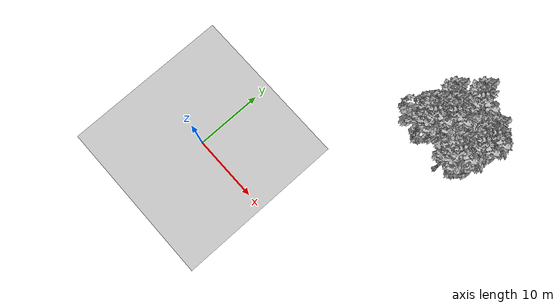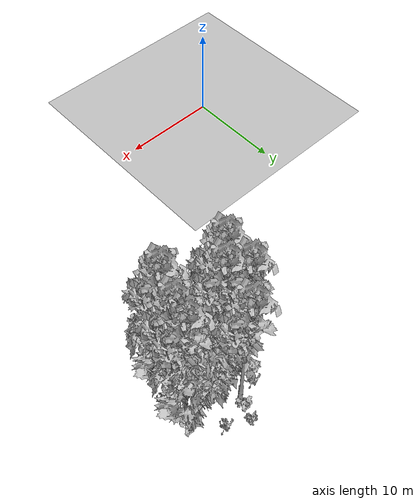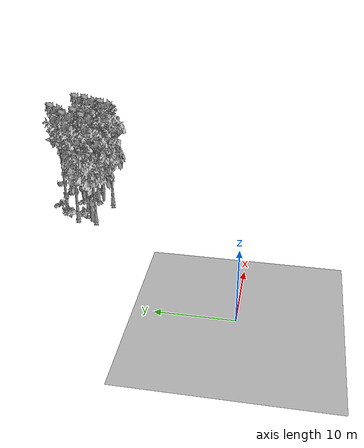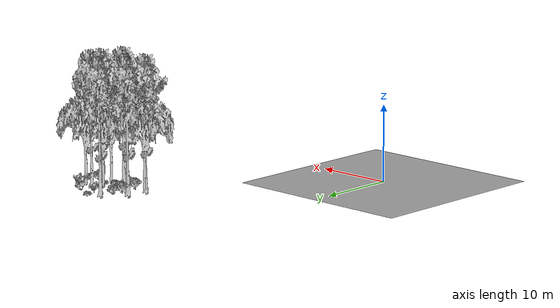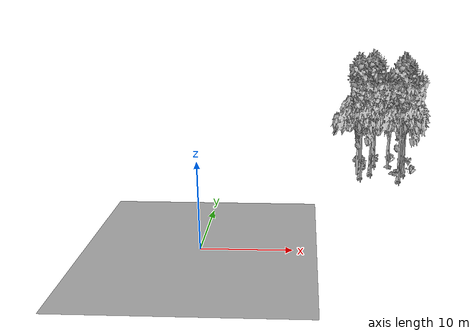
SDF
<sdf version="1.7">
 <world name="default">
  <model name="ground_plane">
   <static>1</static>
   <link name="link">
    <collision name="collision">
     <pose>-50 0 0 0 -0 0</pose>
     <geometry><plane><normal>0 0 1</normal><size>80 80</size></plane></geometry>
     <surface><contact><ode><min_depth>0.01</min_depth><max_vel>0</max_vel></ode></contact></surface>
    </collision>
    <visual name="grass">
     <cast_shadows>0</cast_shadows>
     <geometry>
      <mesh>
       <scale>0.46714285714285714 0.46714285714285714 0.1</scale>
       <uri>file://grass_plane/meshes/grass_plane.dae</uri>
      </mesh>
     </geometry>
    </visual>
   </link>
  </model>
  <model name="Tree 26">
   <static>1</static>
   <pose>25.873625216518377 27.011904275255887 0 1.57079 -0 0</pose>
   <link name="link">
    <collision name="collision">
     <geometry><mesh><scale>3.5 5 3.5</scale><uri>model://tree_2/meshes/tree_2.obj</uri></mesh></geometry>
    </collision>
    <visual name="visual">
     <geometry><mesh><scale>3.5 5 3.5</scale><uri>model://tree_2/meshes/tree_2.obj</uri></mesh></geometry>
    </visual>
   </link>
  </model>
  <model name="Tree 34">
   <static>1</static>
   <pose>23.58904586354729 26.14056285418772 0 1.57079 -0 0</pose>
   <link name="link">
    <collision name="collision">
     <geometry><mesh><scale>3.5 5 3.5</scale><uri>model://tree_2/meshes/tree_2.obj</uri></mesh></geometry>
    </collision>
    <visual name="visual">
     <geometry><mesh><scale>3.5 5 3.5</scale><uri>model://tree_2/meshes/tree_2.obj</uri></mesh></geometry>
    </visual>
   </link>
  </model>
  <model name="Tree 114">
   <static>1</static>
   <pose>19.263657673488368 22.98417993409538 0 1.57079 -0 0</pose>
   <link name="link">
    <collision name="collision">
     <geometry><mesh><scale>3.5 5 3.5</scale><uri>model://tree_9/meshes/tree_9.obj</uri></mesh></geometry>
    </collision>
    <visual name="visual">
     <geometry><mesh><scale>3.5 5 3.5</scale><uri>model://tree_9/meshes/tree_9.obj</uri></mesh></geometry>
    </visual>
   </link>
  </model>
  <model name="Tree 183">
   <static>1</static>
   <pose>25.96664257726701 26.016270863337525 0 1.57079 -0 0</pose>
   <link name="link">
    <collision name="collision">
     <geometry><mesh><scale>3.5 5 3.5</scale><uri>model://tree_9/meshes/tree_9.obj</uri></mesh></geometry>
    </collision>
    <visual name="visual">
     <geometry><mesh><scale>3.5 5 3.5</scale><uri>model://tree_9/meshes/tree_9.obj</uri></mesh></geometry>
    </visual>
   </link>
  </model>
  <model name="Tree 193">
   <static>1</static>
   <pose>25.690124648661637 24.477165351252268 0 1.57079 -0 0</pose>
   <link name="link">
    <collision name="collision">
     <geometry><mesh><scale>3.5 5 3.5</scale><uri>model://tree_9/meshes/tree_9.obj</uri></mesh></geometry>
    </collision>
    <visual name="visual">
     <geometry><mesh><scale>3.5 5 3.5</scale><uri>model://tree_9/meshes/tree_9.obj</uri></mesh></geometry>
    </visual>
   </link>
  </model>
  <model name="Tree 349">
   <static>1</static>
   <pose>24.617955551284098 21.802923158116265 0 1.57079 -0 0</pose>
   <link name="link">
    <collision name="collision">
     <geometry><mesh><scale>3.5 5 3.5</scale><uri>model://tree_9/meshes/tree_9.obj</uri></mesh></geometry>
    </collision>
    <visual name="visual">
     <geometry><mesh><scale>3.5 5 3.5</scale><uri>model://tree_9/meshes/tree_9.obj</uri></mesh></geometry>
    </visual>
   </link>
  </model>
  <model name="Tree 384">
   <static>1</static>
   <pose>19.50519140090414 25.78435874970478 0 1.57079 -0 0</pose>
   <link name="link">
    <collision name="collision">
     <geometry><mesh><scale>3.5 5 3.5</scale><uri>model://tree_9/meshes/tree_9.obj</uri></mesh></geometry>
    </collision>
    <visual name="visual">
     <geometry><mesh><scale>3.5 5 3.5</scale><uri>model://tree_9/meshes/tree_9.obj</uri></mesh></geometry>
    </visual>
   </link>
  </model>
  <model name="Tree 436">
   <static>1</static>
   <pose>25.07741043083457 23.442613582219607 0 1.57079 -0 0</pose>
   <link name="link">
    <collision name="collision">
     <geometry><mesh><scale>3.5 5 3.5</scale><uri>model://tree_2/meshes/tree_2.obj</uri></mesh></geometry>
    </collision>
    <visual name="visual">
     <geometry><mesh><scale>3.5 5 3.5</scale><uri>model://tree_2/meshes/tree_2.obj</uri></mesh></geometry>
    </visual>
   </link>
  </model>
  <model name="Tree 470">
   <static>1</static>
   <pose>18.877482277862256 23.478550040660892 0 1.57079 -0 0</pose>
   <link name="link">
    <collision name="collision">
     <geometry><mesh><scale>3.5 5 3.5</scale><uri>model://tree_2/meshes/tree_2.obj</uri></mesh></geometry>
    </collision>
    <visual name="visual">
     <geometry><mesh><scale>3.5 5 3.5</scale><uri>model://tree_2/meshes/tree_2.obj</uri></mesh></geometry>
    </visual>
   </link>
  </model>
  <model name="Tree 481">
   <static>1</static>
   <pose>20.881335508098886 24.622786632138386 0 1.57079 -0 0</pose>
   <link name="link">
    <collision name="collision">
     <geometry><mesh><scale>3.5 5 3.5</scale><uri>model://tree_9/meshes/tree_9.obj</uri></mesh></geometry>
    </collision>
    <visual name="visual">
     <geometry><mesh><scale>3.5 5 3.5</scale><uri>model://tree_9/meshes/tree_9.obj</uri></mesh></geometry>
    </visual>
   </link>
  </model>
  <model name="Tree 552">
   <static>1</static>
   <pose>21.848266905835487 28.300928466914726 0 1.57079 -0 0</pose>
   <link name="link">
    <collision name="collision">
     <geometry><mesh><scale>3.5 5 3.5</scale><uri>model://tree_9/meshes/tree_9.obj</uri></mesh></geometry>
    </collision>
    <visual name="visual">
     <geometry><mesh><scale>3.5 5 3.5</scale><uri>model://tree_9/meshes/tree_9.obj</uri></mesh></geometry>
    </visual>
   </link>
  </model>
  <model name="Bush 41">
   <static>1</static>
   <pose>19.524369817513744 24.520966795746062 0 1.57079 -0 0</pose>
   <link name="link">
    <collision name="collision">
     <geometry><mesh><scale>2 2 2</scale><uri>model://bush_1/meshes/bush_1.obj</uri></mesh></geometry>
     <surface><contact><collide_without_contact>false</collide_without_contact></contact></surface>
    </collision>
    <visual name="visual">
     <geometry><mesh><scale>2 2 2</scale><uri>model://bush_1/meshes/bush_1.obj</uri></mesh></geometry>
    </visual>
   </link>
  </model>
  <model name="Bush 83">
   <static>1</static>
   <pose>23.80368324574863 26.58401078969254 0 1.57079 -0 0</pose>
   <link name="link">
    <collision name="collision">
     <geometry><mesh><scale>2 2 2</scale><uri>model://bush_2/meshes/bush_2.obj</uri></mesh></geometry>
     <surface><contact><collide_without_contact>false</collide_without_contact></contact></surface>
    </collision>
    <visual name="visual">
     <geometry><mesh><scale>2 2 2</scale><uri>model://bush_2/meshes/bush_2.obj</uri></mesh></geometry>
    </visual>
   </link>
  </model>
  <model name="Bush 146">
   <static>1</static>
   <pose>25.81103999221601 27.00196645242184 0 1.57079 -0 0</pose>
   <link name="link">
    <collision name="collision">
     <geometry><mesh><scale>2 2 2</scale><uri>model://bush_5/meshes/bush_5.obj</uri></mesh></geometry>
     <surface><contact><collide_without_contact>false</collide_without_contact></contact></surface>
    </collision>
    <visual name="visual">
     <geometry><mesh><scale>2 2 2</scale><uri>model://bush_5/meshes/bush_5.obj</uri></mesh></geometry>
    </visual>
   </link>
  </model>
  <model name="Bush 197">
   <static>1</static>
   <pose>26.780916078447973 24.099896281505323 0 1.57079 -0 0</pose>
   <link name="link">
    <collision name="collision">
     <geometry><mesh><scale>2 2 2</scale><uri>model://bush_4/meshes/bush_4.obj</uri></mesh></geometry>
     <surface><contact><collide_without_contact>false</collide_without_contact></contact></surface>
    </collision>
    <visual name="visual">
     <geometry><mesh><scale>2 2 2</scale><uri>model://bush_4/meshes/bush_4.obj</uri></mesh></geometry>
    </visual>
   </link>
  </model>
  <model name="Bush 298">
   <static>1</static>
   <pose>22.235337652107425 30.02990511421845 0 1.57079 -0 0</pose>
   <link name="link">
    <collision name="collision">
     <geometry><mesh><scale>2 2 2</scale><uri>model://bush_2/meshes/bush_2.obj</uri></mesh></geometry>
     <surface><contact><collide_without_contact>false</collide_without_contact></contact></surface>
    </collision>
    <visual name="visual">
     <geometry><mesh><scale>2 2 2</scale><uri>model://bush_2/meshes/bush_2.obj</uri></mesh></geometry>
    </visual>
   </link>
  </model>
  <model name="Bush 301">
   <static>1</static>
   <pose>22.161042611042838 29.097701504286036 0 1.57079 -0 0</pose>
   <link name="link">
    <collision name="collision">
     <geometry><mesh><scale>2 2 2</scale><uri>model://bush_0/meshes/bush_0.obj</uri></mesh></geometry>
     <surface><contact><collide_without_contact>false</collide_without_contact></contact></surface>
    </collision>
    <visual name="visual">
     <geometry><mesh><scale>2 2 2</scale><uri>model://bush_0/meshes/bush_0.obj</uri></mesh></geometry>
    </visual>
   </link>
  </model>
  <model name="Bush 349">
   <static>1</static>
   <pose>19.423195946294193 26.83146269575552 0 1.57079 -0 0</pose>
   <link name="link">
    <collision name="collision">
     <geometry><mesh><scale>2 2 2</scale><uri>model://bush_1/meshes/bush_1.obj</uri></mesh></geometry>
     <surface><contact><collide_without_contact>false</collide_without_contact></contact></surface>
    </collision>
    <visual name="visual">
     <geometry><mesh><scale>2 2 2</scale><uri>model://bush_1/meshes/bush_1.obj</uri></mesh></geometry>
    </visual>
   </link>
  </model>
  <model name="Bush 380">
   <static>1</static>
   <pose>19.98261820093164 27.879384319023004 0 1.57079 -0 0</pose>
   <link name="link">
    <collision name="collision">
     <geometry><mesh><scale>2 2 2</scale><uri>model://bush_4/meshes/bush_4.obj</uri></mesh></geometry>
     <surface><contact><collide_without_contact>false</collide_without_contact></contact></surface>
    </collision>
    <visual name="visual">
     <geometry><mesh><scale>2 2 2</scale><uri>model://bush_4/meshes/bush_4.obj</uri></mesh></geometry>
    </visual>
   </link>
  </model>
  <model name="Bush 399">
   <static>1</static>
   <pose>26.95249447070846 27.48095414309931 0 1.57079 -0 0</pose>
   <link name="link">
    <collision name="collision">
     <geometry><mesh><scale>2 2 2</scale><uri>model://bush_0/meshes/bush_0.obj</uri></mesh></geometry>
     <surface><contact><collide_without_contact>false</collide_without_contact></contact></surface>
    </collision>
    <visual name="visual">
     <geometry><mesh><scale>2 2 2</scale><uri>model://bush_0/meshes/bush_0.obj</uri></mesh></geometry>
    </visual>
   </link>
  </model>
  <model name="Bush 472">
   <static>1</static>
   <pose>24.112535872484585 23.78758375901492 0 1.57079 -0 0</pose>
   <link name="link">
    <collision name="collision">
     <geometry><mesh><scale>2 2 2</scale><uri>model://bush_2/meshes/bush_2.obj</uri></mesh></geometry>
     <surface><contact><collide_without_contact>false</collide_without_contact></contact></surface>
    </collision>
    <visual name="visual">
     <geometry><mesh><scale>2 2 2</scale><uri>model://bush_2/meshes/bush_2.obj</uri></mesh></geometry>
    </visual>
   </link>
  </model>
  <model name="Bush 530">
   <static>1</static>
   <pose>24.878094649632622 24.78766235839356 0 1.57079 -0 0</pose>
   <link name="link">
    <collision name="collision">
     <geometry><mesh><scale>2 2 2</scale><uri>model://bush_2/meshes/bush_2.obj</uri></mesh></geometry>
     <surface><contact><collide_without_contact>false</collide_without_contact></contact></surface>
    </collision>
    <visual name="visual">
     <geometry><mesh><scale>2 2 2</scale><uri>model://bush_2/meshes/bush_2.obj</uri></mesh></geometry>
    </visual>
   </link>
  </model>
  <model name="Bush 631">
   <static>1</static>
   <pose>24.46734865685856 29.208206385867285 0 1.57079 -0 0</pose>
   <link name="link">
    <collision name="collision">
     <geometry><mesh><scale>2 2 2</scale><uri>model://bush_4/meshes/bush_4.obj</uri></mesh></geometry>
     <surface><contact><collide_without_contact>false</collide_without_contact></contact></surface>
    </collision>
    <visual name="visual">
     <geometry><mesh><scale>2 2 2</scale><uri>model://bush_4/meshes/bush_4.obj</uri></mesh></geometry>
    </visual>
   </link>
  </model>
 </world>
</sdf>
